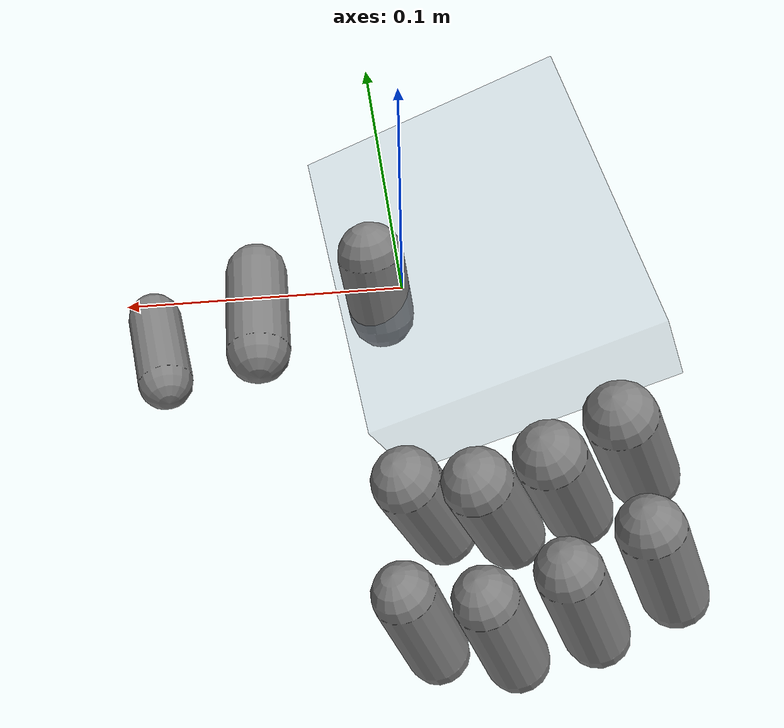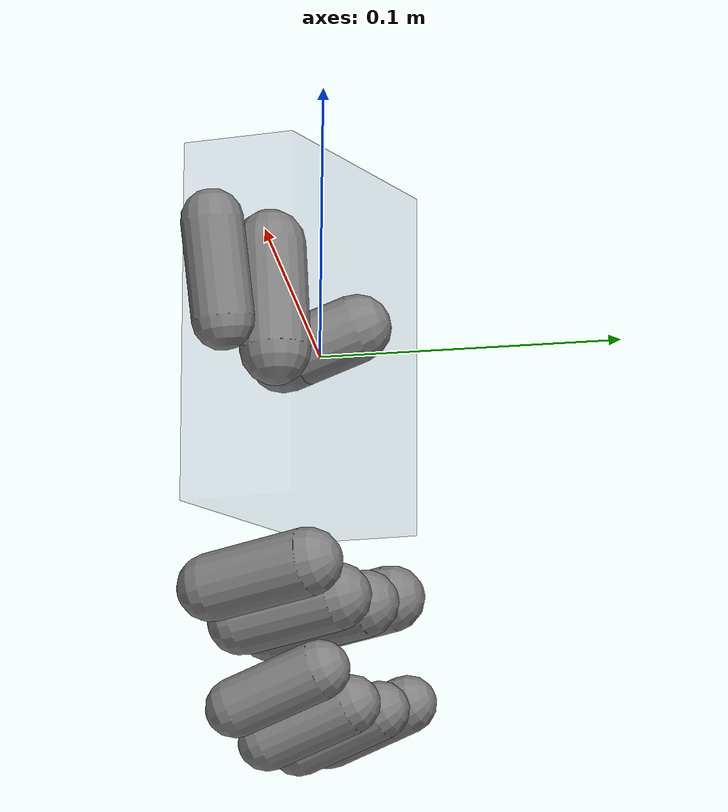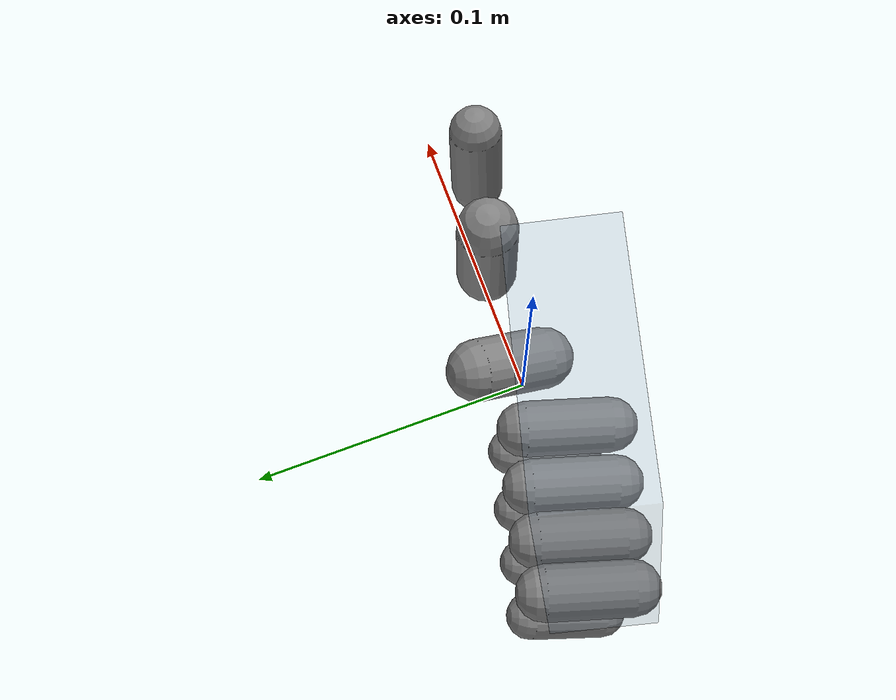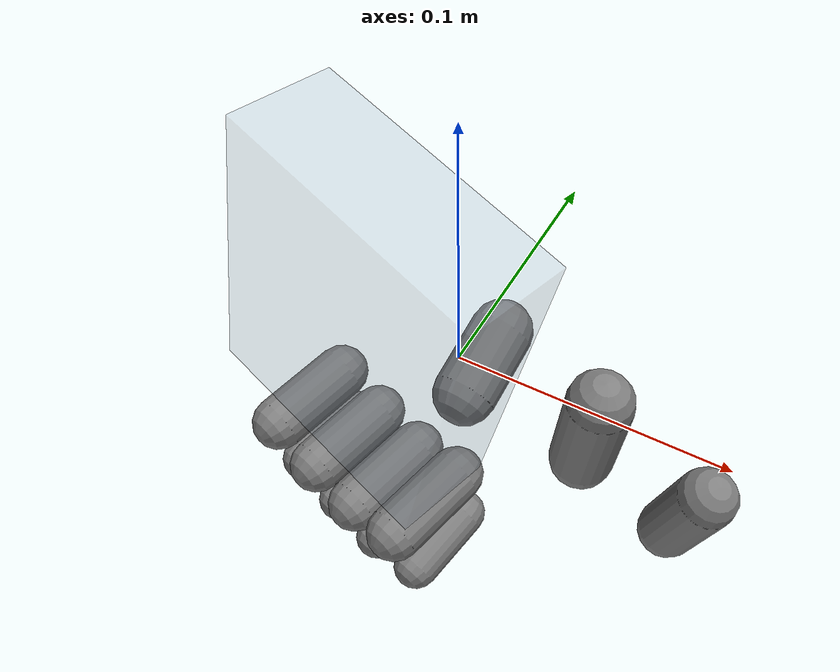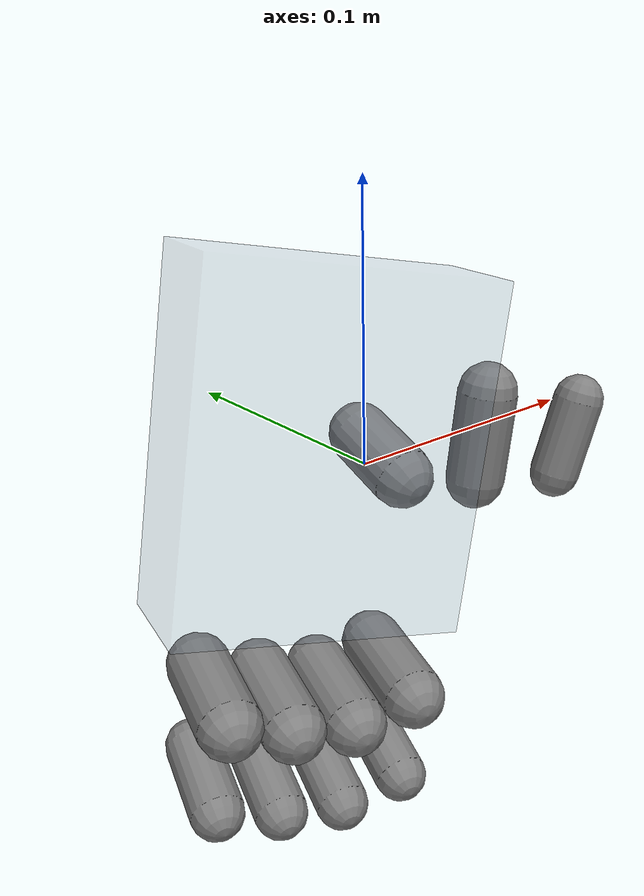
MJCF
<mujoco model="Kable_Hand">
    <compiler angle="radian" />
    <size njmax="500" nconmax="100" />
    <asset>
        <mesh name="base_link" file="./Kable_Hand_mjcf/meshes/base_link.STL" />
        <mesh name="Gear_Link1" file="./Kable_Hand_mjcf/meshes/Gear_Link1.STL" />
        <mesh name="Gear_Link2" file="./Kable_Hand_mjcf/meshes/Gear_Link2.STL" />
        <mesh name="Gear_Link3" file="./Kable_Hand_mjcf/meshes/Gear_Link3.STL" />
        <mesh name="Gear_Link4" file="./Kable_Hand_mjcf/meshes/Gear_Link4.STL" />
        <mesh name="Thumb_Side_Gear_Link" file="./Kable_Hand_mjcf/meshes/Thumb_Side_Gear_Link.STL" />
        <mesh name="Thumb_Link1" file="./Kable_Hand_mjcf/meshes/Thumb_Link1.STL" />
        <mesh name="Thumb_Link2" file="./Kable_Hand_mjcf/meshes/Thumb_Link2.STL" />
        <mesh name="Thumb_Gear_Link" file="./Kable_Hand_mjcf/meshes/Thumb_Gear_Link.STL" />
        <mesh name="Finger1_Link1" file="./Kable_Hand_mjcf/meshes/Finger1_Link1.STL" />
        <mesh name="Finger1_Link2" file="./Kable_Hand_mjcf/meshes/Finger1_Link2.STL" />
        <mesh name="Finger2_Link1" file="./Kable_Hand_mjcf/meshes/Finger2_Link1.STL" />
        <mesh name="Finger2_Link2" file="./Kable_Hand_mjcf/meshes/Finger2_Link2.STL" />
        <mesh name="Finger3_Link1" file="./Kable_Hand_mjcf/meshes/Finger3_Link1.STL" />
        <mesh name="Finger3_Link2" file="./Kable_Hand_mjcf/meshes/Finger3_Link2.STL" />
        <mesh name="Finger4_Link1" file="./Kable_Hand_mjcf/meshes/Finger4_Link1.STL" />
        <mesh name="Finger4_Link2" file="./Kable_Hand_mjcf/meshes/Finger4_Link2.STL" />
    </asset>
    <worldbody>
        <body name="base_link">
            <geom pos="-0.02852592 -0.01104275  0.01763111" quat="-0.46102097  0.62253921  0.39097671  0.49703301" size="0.060424 0.050936 0.02"  type="box" rgba="0.4 0.5 0.6 0.1" />

            <body name="Thumb_Side_Gear_Link" pos="0 0 0">
                <inertial pos="0.010087 0.0025106 0.0052169" quat="0.55709 0.428215 0.406231 0.584174" mass="0.025787" diaginertia="3.61958e-06 3.17618e-06 2.17894e-06" />
                <joint name="Thumb_Side_Gear_Joint" pos="0 0 0" axis="0 0 1" limited="true" range="0 1.57" />
                <geom pos="0.00885355 0.00157962 0.00081656" quat="0.815854   -0.57012147  0.07521388  0.06071765" size="0.01142141 0.01314742" type="capsule"/>
                <body name="Thumb_Link1" pos="0.029921 0 0" quat="0.70262 -0.699778 0.101552 -0.0795193">
                    <inertial pos="0.025498 -0.00019689 -4.4958e-05" quat="-4.802e-05 0.709322 0.0148423 0.704729" mass="0.025004" diaginertia="4.9813e-06 4.70273e-06 9.44934e-07" />
                    <joint name="Thumb_Joint1" pos="0 0 0" axis="0 0 -1" limited="true" range="-1.396 0" />
                    <geom pos="2.41296654e-02 7.32636757e-04 5.90247335e-06" quat="-0.7120584   0.70109845  0.02625209 -0.02728793" size="0.01142141 0.01766193" type="capsule"/>
                    <body name="Thumb_Link2" pos="0.044515 0.0015319 0" quat="0.962926 0 0 0.269766">
                        <inertial pos="0.020026 -0.0068153 -6.9655e-05" quat="0.129249 0.701715 -0.0866042 0.695262" mass="0.015561" diaginertia="2.11132e-06 2.07982e-06 4.25193e-07" />
                        <joint name="Thumb_Joint2" pos="0 0 0" axis="0 0 -1" limited="true" range="-1.396 0" />
                        <geom pos="1.95002388e-02 -5.88227962e-03 -4.72703774e-06" quat="0.69815694  0.70161546 -0.10052421 -0.1010322" size="0.00986723 0.01550652" type="capsule"/>
                    </body>
                </body>
            </body>
            <body name="Finger1_Link1" pos="-0.068818 -0.0046734 -0.040694" quat="0.669947 0.11879 0.730029 -0.0641679">
                <inertial pos="0.025476 -0.0010737 -4.4951e-05" quat="0.0120778 0.709473 0.00264935 0.704625" mass="0.025004" diaginertia="4.9813e-06 4.70275e-06 9.44932e-07" />
                <joint name="Finger1_Joint1" pos="0 0 0" axis="0 0 -1" limited="true" range="-1.396 0" />
                <geom pos="2.41396102e-02 -9.43994402e-05  1.89345852e-05" quat="0.7129768780248351 -0.7008696112493811 -0.014761007020653263 0.01509543311195033" size="0.01142747 0.0176493319518365" type="capsule"/>
                <body name="Finger1_Link2" pos="0.044541 0 0" quat="0.967422 0 0 0.253169">
                    <inertial pos="0.020025 -0.0068148 -6.9833e-05" quat="0.129172 0.701715 -0.0866476 0.695271" mass="0.01556" diaginertia="2.11112e-06 2.07966e-06 4.25151e-07" />
                    <joint name="Finger1_Joint2" pos="0 0 0" axis="0 0 -1" limited="true" range="-1.396 0" />
                    <geom pos="1.95002388e-02 -5.88227962e-03 -4.72703774e-06" quat="0.6981569445444467 0.7016154636770108 -0.10052420976583545 -0.10103219865275567" size="0.00986723279161551 0.01550652485013113" type="capsule"/>
                </body>
            </body>
            <body name="Finger2_Link1" pos="-0.047991 -0.010143 -0.049531" quat="0.68142 0.117101 0.71951 -0.0652694">
                <inertial pos="0.025476 -0.0010737 -4.4938e-05" quat="0.0120782 0.709472 0.00264963 0.704625" mass="0.025004" diaginertia="4.9813e-06 4.70275e-06 9.44932e-07" />
                <joint name="Finger2_Joint1" pos="0 0 0" axis="0 0 -1" limited="true" range="-1.396 0" />
                <geom pos="2.41396102e-02 -9.44070949e-05  1.89045596e-05" quat="0.7129769028873968 -0.7008695906822586 -0.014760452837279125 0.015095755629222107" size="0.01142746671382966 0.0176493319518365" type="capsule"/>
                <body name="Finger2_Link2" pos="0.044541 0 0" quat="0.967422 0 0 0.253169">
                    <inertial pos="0.0200259 -0.00681524 -6.96454e-05" quat="0.12927 0.701717 -0.0865771 0.69526" mass="0.015561" diaginertia="2.11133e-06 2.07983e-06 4.25182e-07" />
                    <joint name="Finger2_Joint2" pos="0 0 0" axis="0 0 -1" limited="true" range="-1.396 0" />
                    <geom pos="1.95002388e-02 -5.88227962e-03 -4.72703774e-06" quat="0.6981569445444467 0.7016154636770109 -0.10052420976583532 -0.10103219865275564" size="0.009867232791615516 0.01550652485013113" type="capsule"/>
                </body>
            </body>
            <body name="Finger3_Link1" pos="-0.026589 -0.015763 -0.054359" quat="0.692748 0.115318 0.708802 -0.0663487">
                <inertial pos="0.025476 -0.0010737 -4.4956e-05" quat="0.0120736 0.709472 0.00264194 0.704625" mass="0.025004" diaginertia="4.9813e-06 4.70276e-06 9.44931e-07" />
                <joint name="Finger3_Joint1" pos="0 0 0" axis="0 0 -1" limited="true" range="-1.396 0" />
                <geom pos="2.41396102e-02 -9.44070949e-05  1.89045596e-05" quat="0.7129769028873968 -0.7008695906822588 -0.014760452837279038 0.01509575562922194" size="0.01142746671382966 0.0176493319518365" type="capsule"/>
                <body name="Finger3_Link2" pos="0.044541 0 0" quat="0.967422 0 0 0.253169">
                    <inertial pos="0.020026 -0.0068153 -6.9667e-05" quat="0.129247 0.701715 -0.086605 0.695264" mass="0.015561" diaginertia="2.11132e-06 2.07982e-06 4.25184e-07" />
                    <joint name="Finger3_Joint2" pos="0 0 0" axis="0 0 -1" limited="true" range="-1.396 0" />
                    <geom pos="1.95002388e-02 -5.88227962e-03 -4.72703774e-06" quat="0.69815694  0.70161546 -0.10052421 -0.1010322" size="0.00986723 0.01550652" type="capsule"/>
                </body>
            </body>
            <body name="Finger4_Link1" pos="-0.004935 -0.02145 -0.04993" quat="0.703885 0.113561 0.697928 -0.0674274">
                <inertial pos="0.025476 -0.0010737 -4.4975e-05" quat="0.0120723 0.709472 0.00264369 0.704625" mass="0.025004" diaginertia="4.9813e-06 4.70276e-06 9.44932e-07" />
                <joint name="Finger4_Joint1" pos="0 0 0" axis="0 0 -1" limited="true" range="-1.396 0" />
                <geom pos="2.41396102e-02 -9.44070949e-05  1.89045596e-05" quat="0.7129769  -0.70086959 -0.01476045  0.01509576" size="0.01142747 0.01764933" type="capsule"/>
                <body name="Finger4_Link2" pos="0.044541 0 0" quat="0.967422 0 0 0.253169">
                    <inertial pos="0.020026 -0.0068153 -6.9715e-05" quat="0.129308 0.701723 -0.0865308 0.695253" mass="0.015561" diaginertia="2.11132e-06 2.07991e-06 4.25184e-07" />
                    <joint name="Finger4_Joint2" pos="0 0 0" axis="0 0 -1" limited="true" range="-1.396 0" />
                    <geom pos="1.95002388e-02 -5.88227962e-03 -4.72703774e-06" quat="0.69815694  0.70161546 -0.10052421 -0.1010322" size="0.00986723 0.01550652" type="capsule"/>
                </body>
            </body>
        </body>
    </worldbody>
</mujoco>
